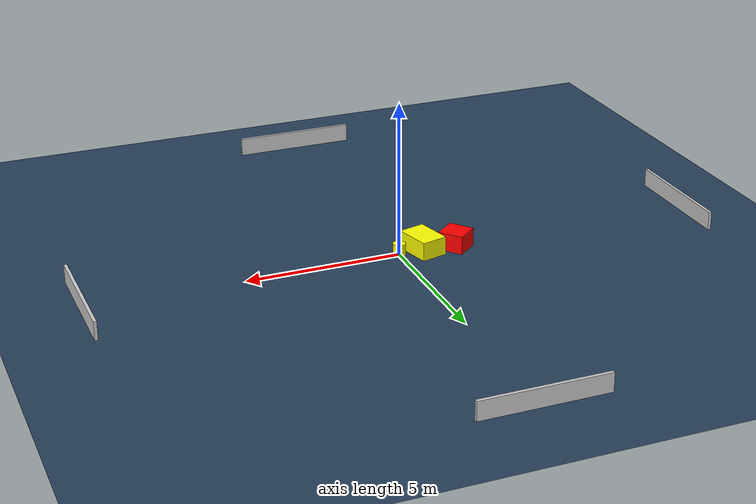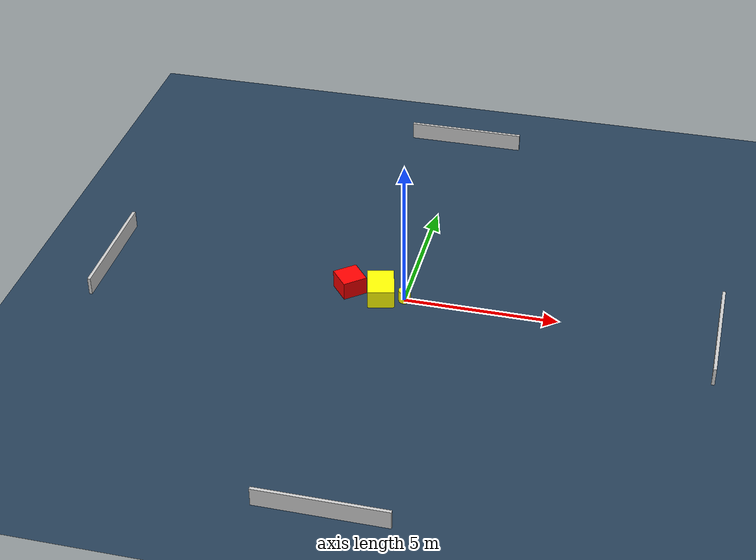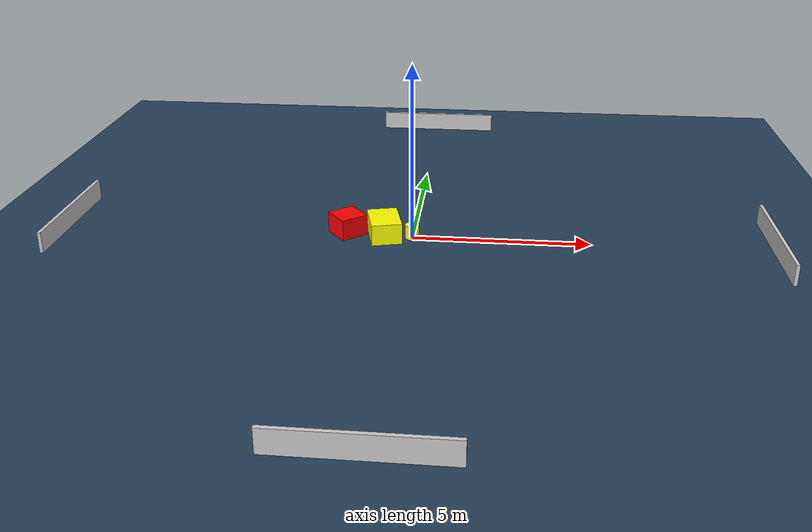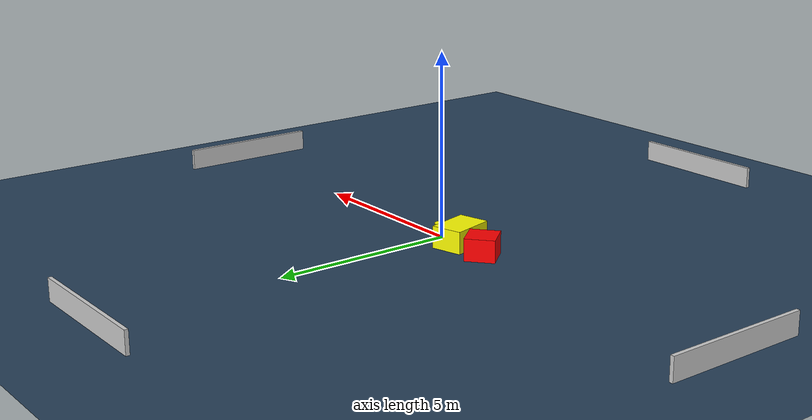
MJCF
<?xml version="1.0" ?>
<mujoco model="generated_environment">
  <option timestep="0.01" integrator="RK4" cone="elliptic"/>
  <default>
    <geom density="1"/>
  </default>
  <asset>
    <texture builtin="gradient" height="3072" name="skybox" rgb1="0.3 0.5 0.7" rgb2="0 0 0" type="skybox" width="512"/>
    <texture builtin="checker" height="300" name="groundplane" rgb1="0.2 0.3 0.4" rgb2="0.1 0.2 0.3" type="2d" width="300"/>
    <material name="groundplane" reflectance="0.2" texrepeat="5 5" texture="groundplane"/>
  </asset>
  <worldbody>
    <light dir="0 0 -1" directional="true" pos="0 0 1.5"/>
    <geom condim="3" friction="0.5 0.005 0.001" material="groundplane" name="floor" pos="0 0 0" size="0 0 0.05" type="plane"/>
    <body name="walls">
      <geom name="wall_1" condim="4" pos="-10.0 0.0 0.3" rgba="0.800000011920929 0.800000011920929 0.800000011920929 1.0" size="0.05 2.0 0.3" type="box"/>
      <geom name="wall_2" condim="4" pos="10.0 0.0 0.3" rgba="0.800000011920929 0.800000011920929 0.800000011920929 1.0" size="0.05 2.0 0.3" type="box"/>
      <geom name="wall_3" condim="4" pos="0.0 -10.0 0.3" rgba="0.800000011920929 0.800000011920929 0.800000011920929 1.0" size="2.0 0.05 0.3" type="box"/>
      <geom name="wall_4" condim="4" pos="0.0 10.0 0.3" rgba="0.800000011920929 0.800000011920929 0.800000011920929 1.0" size="2.0 0.05 0.3" type="box"/>
    </body>
    <body name="robot">
      <joint name="joint_x" type="slide" pos="0 0 0" axis="1 0 0"/>
      <joint name="joint_y" type="slide" pos="0 0 0" axis="0 1 0"/>
      <geom name="robot" type="cylinder" pos="0.0 0.0 0.2" size="0.2 0.2 0.0" mass="5.0" friction="1.0 0.005 0.0001" condim="4" rgba="1.0 1.0 0.0 1.0"/>
    </body>
    <body name="obstacle_1_movable">
      <geom name="obstacle_1_movable" condim="4" pos="-0.7955055331765941 0.02482232500893376 0.3" euler="0 0 104.21185738484698" friction="0.0 0.005 0.001" rgba="1.0 1.0 0.0 1.0" size="0.6043638608281761 0.43182628833891595 0.3" type="box" mass="0.1"/>
      <joint type="free"/>
    </body>
    <body name="obstacle_2_static">
      <geom name="obstacle_2_static" condim="4" pos="-1.861845998134745 0.16362949283379344 0.3" euler="0 0 129.56558378420723" friction="0.0 0.005 0.001" rgba="1.0 0.0 0.0 1.0" size="0.41055878051513994 0.4037630001902236 0.3" type="box"/>
    </body>
  </worldbody>
  <actuator>
    <motor name="actuator_x" joint="joint_x" gear="1" ctrlrange="-1 1"/>
    <motor name="actuator_y" joint="joint_y" gear="1" ctrlrange="-1 1"/>
  </actuator>
</mujoco>
